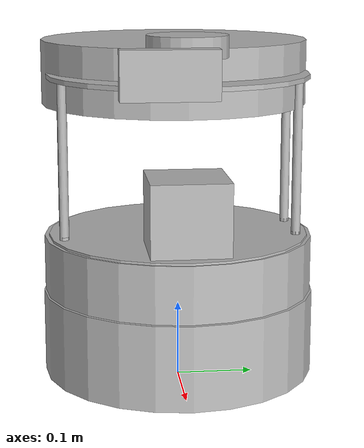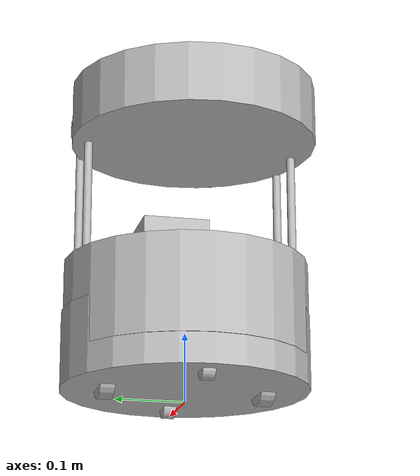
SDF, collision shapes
<sdf version='1.6'>
  <model name='barista'>
    <link name='base_footprint'>
      <pose frame=''>0 0 0 0 -0 0</pose>
      <inertial>
        <pose frame=''>0.005304 1.4e-05 0.124445 0 -0 0</pose>
        <mass>4.52732</mass>
        <inertia>
          <ixx>0.135183</ixx>
          <ixy>-3.18348e-06</ixy>
          <ixz>0.00493661</ixz>
          <iyy>0.12999</iyy>
          <iyz>5.83081e-06</iyz>
          <izz>0.0713493</izz>
        </inertia>
      </inertial>
      <collision name='base_footprint_fixed_joint_lump__base_link_collision'>
        <pose frame=''>0 0 0.06969 0 -0 0</pose>
        <geometry>
          <cylinder>
            <length>0.10938</length>
            <radius>0.178</radius>
          </cylinder>
        </geometry>
        <surface>
          <contact>
            <ode/>
          </contact>
          <friction>
            <ode>
              <mu>0.3</mu>
              <mu2>0.3</mu2>
            </ode>
          </friction>
        </surface>
      </collision>
      <collision name='base_footprint_fixed_joint_lump__caster_back_link_collision_1'>
        <pose frame=''>-0.135 0 0.0192 -1.5708 0 0</pose>
        <geometry>
          <cylinder>
            <length>0.0176</length>
            <radius>0.017</radius>
          </cylinder>
        </geometry>
        <surface>
          <contact>
            <ode>
              <kp>1e+06</kp>
              <kd>100</kd>
              <max_vel>1</max_vel>
              <min_depth>0.001</min_depth>
            </ode>
          </contact>
          <friction>
            <ode>
              <mu>0</mu>
              <mu2>0</mu2>
            </ode>
          </friction>
        </surface>
      </collision>
      <collision name='base_footprint_fixed_joint_lump__caster_front_link_collision_2'>
        <pose frame=''>0.115 0 0.0172 -1.5708 0 0</pose>
        <geometry>
          <cylinder>
            <length>0.0176</length>
            <radius>0.017</radius>
          </cylinder>
        </geometry>
        <surface>
          <contact>
            <ode>
              <kp>1e+06</kp>
              <kd>100</kd>
              <max_vel>1</max_vel>
              <min_depth>0.001</min_depth>
            </ode>
          </contact>
          <friction>
            <ode>
              <mu>0</mu>
              <mu2>0</mu2>
            </ode>
          </friction>
        </surface>
      </collision>
      <collision name='base_footprint_fixed_joint_lump__plate_bottom_link_collision_3'>
        <pose frame=''>0 0 0.1408 0 -0 0</pose>
        <geometry>
          <cylinder>
            <length>0.006</length>
            <radius>0.17</radius>
          </cylinder>
        </geometry>
      </collision>
      <collision name='base_footprint_fixed_joint_lump__plate_middle_link_collision_4'>
        <pose frame=''>0 0 0.1976 0 -0 0</pose>
        <geometry>
          <cylinder>
            <length>0.006</length>
            <radius>0.17</radius>
          </cylinder>
        </geometry>
      </collision>
      <collision name='base_footprint_fixed_joint_lump__barista_bottom_link_collision_5'>
        <pose frame=''>-0.00364 0 0.1276 0 -0 0</pose>
        <geometry>
          <cylinder>
            <length>0.14</length>
            <radius>0.176002</radius>
          </cylinder>
        </geometry>
      </collision>
      <collision name='base_footprint_fixed_joint_lump__laser_collision_6'>
        <pose frame=''>0.103007 0 0.2426 0 -0 0</pose>
        <geometry>
          <box>
            <size>0.1 0.1 0.1</size>
          </box>
        </geometry>
        <surface>
          <contact>
            <ode/>
          </contact>
          <friction>
            <ode/>
          </friction>
        </surface>
      </collision>
      <collision name='base_footprint_fixed_joint_lump__plate_top_link_collision_7'>
        <pose frame=''>0 0 0.4068 0 -0 0</pose>
        <geometry>
          <cylinder>
            <length>0.006</length>
            <radius>0.17</radius>
          </cylinder>
        </geometry>
      </collision>
      <collision name='base_footprint_fixed_joint_lump__barista_top_link_collision_8'>
        <pose frame=''>-0.05614 0 0.4068 0 -0 0</pose>
        <geometry>
          <cylinder>
            <length>0.085</length>
            <radius>0.176002</radius>
          </cylinder>
        </geometry>
      </collision>
      <collision name='base_footprint_fixed_joint_lump__barista_bowtie_link_collision_9'>
        <pose frame=''>0.182189 -0.029498 0.42554 0 -0 1.57</pose>
        <geometry>
          <box>
            <size>0.115703 0.024221 0.058996</size>
          </box>
        </geometry>
      </collision>
      <collision name='base_footprint_fixed_joint_lump__loadsensor_link_collision_10'>
        <pose frame=''>0.103007 0 0.4518 0 -0 0</pose>
        <geometry>
          <cylinder>
            <length>0.027</length>
            <radius>0.05</radius>
          </cylinder>
        </geometry>
        <surface>
          <contact>
            <ode>
              <kp>1e+06</kp>
              <kd>1</kd>
            </ode>
          </contact>
          <friction>
            <ode>
              <mu>2000</mu>
              <mu2>1000</mu2>
            </ode>
          </friction>
        </surface>
      </collision>
      <collision name='base_footprint_fixed_joint_lump__pole_bottom_0_link_collision_11'>
        <pose frame=''>0.12 0.082 0.113 0 -0 0</pose>
        <geometry>
          <cylinder>
            <length>0.0492</length>
            <radius>0.006</radius>
          </cylinder>
        </geometry>
      </collision>
      <collision name='base_footprint_fixed_joint_lump__pole_bottom_1_link_collision_12'>
        <pose frame=''>0.055 0.12 0.113 0 -0 0</pose>
        <geometry>
          <cylinder>
            <length>0.0492</length>
            <radius>0.006</radius>
          </cylinder>
        </geometry>
      </collision>
      <collision name='base_footprint_fixed_joint_lump__pole_bottom_2_link_collision_13'>
        <pose frame=''>-0.055 0.12 0.113 0 -0 0</pose>
        <geometry>
          <cylinder>
            <length>0.0492</length>
            <radius>0.006</radius>
          </cylinder>
        </geometry>
      </collision>
      <collision name='base_footprint_fixed_joint_lump__pole_bottom_3_link_collision_14'>
        <pose frame=''>0.12 -0.082 0.113 0 -0 0</pose>
        <geometry>
          <cylinder>
            <length>0.0492</length>
            <radius>0.006</radius>
          </cylinder>
        </geometry>
      </collision>
      <collision name='base_footprint_fixed_joint_lump__pole_bottom_4_link_collision_15'>
        <pose frame=''>0.055 -0.12 0.113 0 -0 0</pose>
        <geometry>
          <cylinder>
            <length>0.0492</length>
            <radius>0.006</radius>
          </cylinder>
        </geometry>
      </collision>
      <collision name='base_footprint_fixed_joint_lump__pole_bottom_5_link_collision_16'>
        <pose frame=''>-0.055 -0.12 0.113 0 -0 0</pose>
        <geometry>
          <cylinder>
            <length>0.0492</length>
            <radius>0.006</radius>
          </cylinder>
        </geometry>
      </collision>
      <collision name='base_footprint_fixed_joint_lump__pole_middle_0_link_collision_17'>
        <pose frame=''>0.0381 0.1505 0.1742 0 -0 0</pose>
        <geometry>
          <cylinder>
            <length>0.0608</length>
            <radius>0.006</radius>
          </cylinder>
        </geometry>
      </collision>
      <collision name='base_footprint_fixed_joint_lump__pole_middle_1_link_collision_18'>
        <pose frame=''>0.0381 -0.1505 0.1742 0 -0 0</pose>
        <geometry>
          <cylinder>
            <length>0.0608</length>
            <radius>0.006</radius>
          </cylinder>
        </geometry>
      </collision>
      <collision name='base_footprint_fixed_joint_lump__pole_middle_2_link_collision_19'>
        <pose frame=''>-0.0381 0.1505 0.1742 0 -0 0</pose>
        <geometry>
          <cylinder>
            <length>0.0608</length>
            <radius>0.006</radius>
          </cylinder>
        </geometry>
      </collision>
      <collision name='base_footprint_fixed_joint_lump__pole_middle_3_link_collision_20'>
        <pose frame=''>-0.0381 -0.1505 0.1742 0 -0 0</pose>
        <geometry>
          <cylinder>
            <length>0.0608</length>
            <radius>0.006</radius>
          </cylinder>
        </geometry>
      </collision>
      <collision name='base_footprint_fixed_joint_lump__pole_top_0_link_collision_21'>
        <pose frame=''>0.0381 0.1505 0.3022 0 -0 0</pose>
        <geometry>
          <cylinder>
            <length>0.2032</length>
            <radius>0.006</radius>
          </cylinder>
        </geometry>
      </collision>
      <collision name='base_footprint_fixed_joint_lump__pole_top_1_link_collision_22'>
        <pose frame=''>0.0381 -0.1505 0.3022 0 -0 0</pose>
        <geometry>
          <cylinder>
            <length>0.2032</length>
            <radius>0.006</radius>
          </cylinder>
        </geometry>
      </collision>
      <collision name='base_footprint_fixed_joint_lump__pole_top_2_link_collision_23'>
        <pose frame=''>-0.0381 0.1505 0.3022 0 -0 0</pose>
        <geometry>
          <cylinder>
            <length>0.2032</length>
            <radius>0.006</radius>
          </cylinder>
        </geometry>
      </collision>
      <collision name='base_footprint_fixed_joint_lump__pole_top_3_link_collision_24'>
        <pose frame=''>-0.0381 -0.1505 0.3022 0 -0 0</pose>
        <geometry>
          <cylinder>
            <length>0.2032</length>
            <radius>0.006</radius>
          </cylinder>
        </geometry>
      </collision>
      <visual name='base_footprint_fixed_joint_lump__base_link_visual'>
        <pose frame=''>0.001 0 0.06219 0 -0 0</pose>
        <geometry>
          <mesh>
            <scale>1 1 1</scale>
            <uri>model://kobuki_description/meshes/main_body.dae</uri>
          </mesh>
        </geometry>
        <material>
          <script>
            <uri>__default__</uri>
            <name>__default__</name>
          </script>
        </material>
      </visual>
      <visual name='base_footprint_fixed_joint_lump__plate_bottom_link_visual_1'>
        <pose frame=''>0.02364 0 0.1408 0 -0 0</pose>
        <geometry>
          <mesh>
            <scale>1 1 1</scale>
            <uri>model://turtlebot_description/meshes/stacks/hexagons/plate_bottom.dae</uri>
          </mesh>
        </geometry>
      </visual>
      <visual name='base_footprint_fixed_joint_lump__plate_middle_link_visual_2'>
        <pose frame=''>-0.01364 0 0.1976 0 -0 0</pose>
        <geometry>
          <mesh>
            <scale>1 1 1</scale>
            <uri>model://turtlebot_description/meshes/stacks/hexagons/plate_middle.dae</uri>
          </mesh>
        </geometry>
      </visual>
      <visual name='base_footprint_fixed_joint_lump__barista_bottom_link_visual_3'>
        <pose frame=''>-0.00364 0 0.1976 0 -0 0</pose>
        <geometry>
          <mesh>
            <scale>1 1 1</scale>
            <uri>model://barista_description/meshes/barista/BOTTOM_colour.dae</uri>
          </mesh>
        </geometry>
      </visual>
      <visual name='base_footprint_fixed_joint_lump__laser_visual_4'>
        <pose frame=''>0.103007 0 0.2426 0 -0 0</pose>
        <geometry>
          <mesh>
            <scale>1 1 1</scale>
            <uri>model://turtlebot_description/meshes/sensors/hokuyo.dae</uri>
          </mesh>
        </geometry>
        <material>
          <script>
            <uri>__default__</uri>
            <name>__default__</name>
          </script>
        </material>
      </visual>
      <visual name='base_footprint_fixed_joint_lump__plate_top_link_visual_5'>
        <pose frame=''>-0.01364 0 0.4068 0 -0 0</pose>
        <geometry>
          <mesh>
            <scale>1 1 1</scale>
            <uri>model://turtlebot_description/meshes/stacks/hexagons/plate_top.dae</uri>
          </mesh>
        </geometry>
      </visual>
      <visual name='base_footprint_fixed_joint_lump__barista_top_link_visual_6'>
        <pose frame=''>-0.01364 0 0.4068 0 -0 0</pose>
        <geometry>
          <mesh>
            <scale>1 1 1</scale>
            <uri>model://barista_description/meshes/barista/TOP_colour.dae</uri>
          </mesh>
        </geometry>
      </visual>
      <visual name='base_footprint_fixed_joint_lump__barista_bowtie_link_visual_7'>
        <pose frame=''>0.182212 0 0.42554 0 -0 1.57</pose>
        <geometry>
          <mesh>
            <scale>1 1 1</scale>
            <uri>model://barista_description/meshes/barista/bowtie_fixed_colour.dae</uri>
          </mesh>
        </geometry>
      </visual>
      <visual name='base_footprint_fixed_joint_lump__loadsensor_link_visual_8'>
        <pose frame=''>0.103007 0 0.4518 0 -0 0</pose>
        <geometry>
          <cylinder>
            <length>0.027</length>
            <radius>0.05</radius>
          </cylinder>
        </geometry>
        <material>
          <script>
            <name>Gazebo/Green</name>
            <uri>file://media/materials/scripts/gazebo.material</uri>
          </script>
        </material>
      </visual>
      <visual name='base_footprint_fixed_joint_lump__pole_bottom_0_link_visual_9'>
        <pose frame=''>0.12 0.082 0.113 0 -0 0</pose>
        <geometry>
          <mesh>
            <scale>1 1 1</scale>
            <uri>model://turtlebot_description/meshes/stacks/hexagons/pole_bottom.dae</uri>
          </mesh>
        </geometry>
      </visual>
      <visual name='base_footprint_fixed_joint_lump__pole_bottom_1_link_visual_10'>
        <pose frame=''>0.055 0.12 0.113 0 -0 0</pose>
        <geometry>
          <mesh>
            <scale>1 1 1</scale>
            <uri>model://turtlebot_description/meshes/stacks/hexagons/pole_bottom.dae</uri>
          </mesh>
        </geometry>
      </visual>
      <visual name='base_footprint_fixed_joint_lump__pole_bottom_2_link_visual_11'>
        <pose frame=''>-0.055 0.12 0.113 0 -0 0</pose>
        <geometry>
          <mesh>
            <scale>1 1 1</scale>
            <uri>model://turtlebot_description/meshes/stacks/hexagons/pole_bottom.dae</uri>
          </mesh>
        </geometry>
      </visual>
      <visual name='base_footprint_fixed_joint_lump__pole_bottom_3_link_visual_12'>
        <pose frame=''>0.12 -0.082 0.113 0 -0 0</pose>
        <geometry>
          <mesh>
            <scale>1 1 1</scale>
            <uri>model://turtlebot_description/meshes/stacks/hexagons/pole_bottom.dae</uri>
          </mesh>
        </geometry>
      </visual>
      <visual name='base_footprint_fixed_joint_lump__pole_bottom_4_link_visual_13'>
        <pose frame=''>0.055 -0.12 0.113 0 -0 0</pose>
        <geometry>
          <mesh>
            <scale>1 1 1</scale>
            <uri>model://turtlebot_description/meshes/stacks/hexagons/pole_bottom.dae</uri>
          </mesh>
        </geometry>
      </visual>
      <visual name='base_footprint_fixed_joint_lump__pole_bottom_5_link_visual_14'>
        <pose frame=''>-0.055 -0.12 0.113 0 -0 0</pose>
        <geometry>
          <mesh>
            <scale>1 1 1</scale>
            <uri>model://turtlebot_description/meshes/stacks/hexagons/pole_bottom.dae</uri>
          </mesh>
        </geometry>
      </visual>
      <visual name='base_footprint_fixed_joint_lump__pole_middle_0_link_visual_15'>
        <pose frame=''>0.0381 0.1505 0.1742 3.14159 -0 3.14159</pose>
        <geometry>
          <mesh>
            <scale>1 1 1</scale>
            <uri>model://turtlebot_description/meshes/stacks/hexagons/pole_middle.dae</uri>
          </mesh>
        </geometry>
      </visual>
      <visual name='base_footprint_fixed_joint_lump__pole_middle_1_link_visual_16'>
        <pose frame=''>0.0381 -0.1505 0.1742 3.14159 -0 3.14159</pose>
        <geometry>
          <mesh>
            <scale>1 1 1</scale>
            <uri>model://turtlebot_description/meshes/stacks/hexagons/pole_middle.dae</uri>
          </mesh>
        </geometry>
      </visual>
      <visual name='base_footprint_fixed_joint_lump__pole_middle_2_link_visual_17'>
        <pose frame=''>-0.0381 0.1505 0.1742 3.14159 -0 3.14159</pose>
        <geometry>
          <mesh>
            <scale>1 1 1</scale>
            <uri>model://turtlebot_description/meshes/stacks/hexagons/pole_middle.dae</uri>
          </mesh>
        </geometry>
      </visual>
      <visual name='base_footprint_fixed_joint_lump__pole_middle_3_link_visual_18'>
        <pose frame=''>-0.0381 -0.1505 0.1742 3.14159 -0 3.14159</pose>
        <geometry>
          <mesh>
            <scale>1 1 1</scale>
            <uri>model://turtlebot_description/meshes/stacks/hexagons/pole_middle.dae</uri>
          </mesh>
        </geometry>
      </visual>
      <visual name='base_footprint_fixed_joint_lump__pole_top_0_link_visual_19'>
        <pose frame=''>0.0381 0.1505 0.3022 0 -0 0</pose>
        <geometry>
          <mesh>
            <scale>1 1 1</scale>
            <uri>model://turtlebot_description/meshes/stacks/hexagons/pole_top.dae</uri>
          </mesh>
        </geometry>
      </visual>
      <visual name='base_footprint_fixed_joint_lump__pole_top_1_link_visual_20'>
        <pose frame=''>0.0381 -0.1505 0.3022 0 -0 0</pose>
        <geometry>
          <mesh>
            <scale>1 1 1</scale>
            <uri>model://turtlebot_description/meshes/stacks/hexagons/pole_top.dae</uri>
          </mesh>
        </geometry>
      </visual>
      <visual name='base_footprint_fixed_joint_lump__pole_top_2_link_visual_21'>
        <pose frame=''>-0.0381 0.1505 0.3022 0 -0 0</pose>
        <geometry>
          <mesh>
            <scale>1 1 1</scale>
            <uri>model://turtlebot_description/meshes/stacks/hexagons/pole_top.dae</uri>
          </mesh>
        </geometry>
      </visual>
      <visual name='base_footprint_fixed_joint_lump__pole_top_3_link_visual_22'>
        <pose frame=''>-0.0381 -0.1505 0.3022 0 -0 0</pose>
        <geometry>
          <mesh>
            <scale>1 1 1</scale>
            <uri>model://turtlebot_description/meshes/stacks/hexagons/pole_top.dae</uri>
          </mesh>
        </geometry>
      </visual>
      <velocity_decay/>
      <sensor name='bumpers' type='contact'>
        <always_on>1</always_on>
        <update_rate>50</update_rate>
        <visualize>1</visualize>
        <contact>
          <collision>base_footprint_collision_base_link</collision>
          <topic>__default_topic__</topic>
        </contact>
        <pose frame=''>0 0 0.0102 0 -0 0</pose>
      </sensor>
      <velocity_decay/>
      <velocity_decay/>
      <velocity_decay/>
      <sensor name='cliff_sensor_front' type='ray'>
        <always_on>1</always_on>
        <update_rate>50</update_rate>
        <visualize>1</visualize>
        <ray>
          <scan>
            <horizontal>
              <samples>50</samples>
              <resolution>1</resolution>
              <min_angle>-0.0436</min_angle>
              <max_angle>0.0436</max_angle>
            </horizontal>
          </scan>
          <range>
            <min>0.01</min>
            <max>0.15</max>
            <resolution>1</resolution>
          </range>
        </ray>
        <pose frame=''>0.156 0 0.0316 3.14159 1.57079 3.14159</pose>
      </sensor>
      <velocity_decay/>
      <sensor name='cliff_sensor_left' type='ray'>
        <always_on>1</always_on>
        <update_rate>50</update_rate>
        <visualize>1</visualize>
        <ray>
          <scan>
            <horizontal>
              <samples>50</samples>
              <resolution>1</resolution>
              <min_angle>-0.0436</min_angle>
              <max_angle>0.0436</max_angle>
            </horizontal>
          </scan>
          <range>
            <min>0.01</min>
            <max>0.15</max>
            <resolution>1</resolution>
          </range>
        </ray>
        <pose frame=''>0.08734 0.13601 0.0316 3.14159 1.57079 3.14159</pose>
      </sensor>
      <velocity_decay/>
      <sensor name='cliff_sensor_right' type='ray'>
        <always_on>1</always_on>
        <update_rate>50</update_rate>
        <visualize>1</visualize>
        <ray>
          <scan>
            <horizontal>
              <samples>50</samples>
              <resolution>1</resolution>
              <min_angle>-0.0436</min_angle>
              <max_angle>0.0436</max_angle>
            </horizontal>
          </scan>
          <range>
            <min>0.01</min>
            <max>0.15</max>
            <resolution>1</resolution>
          </range>
        </ray>
        <pose frame=''>0.085 -0.13601 0.0316 3.14159 1.57079 3.14159</pose>
      </sensor>
      <velocity_decay/>
      <sensor name='imu' type='imu'>
        <always_on>1</always_on>
        <update_rate>50</update_rate>
        <visualize>0</visualize>
        <imu>
          <angular_velocity>
            <x>
              <noise type='gaussian'>
                <mean>0</mean>
                <stddev>1.96e-06</stddev>
                <bias_mean>0</bias_mean>
                <bias_stddev>0</bias_stddev>
              </noise>
            </x>
            <y>
              <noise type='gaussian'>
                <mean>0</mean>
                <stddev>1.96e-06</stddev>
                <bias_mean>0</bias_mean>
                <bias_stddev>0</bias_stddev>
              </noise>
            </y>
            <z>
              <noise type='gaussian'>
                <mean>0</mean>
                <stddev>1.96e-06</stddev>
                <bias_mean>0</bias_mean>
                <bias_stddev>0</bias_stddev>
              </noise>
            </z>
          </angular_velocity>
          <linear_acceleration>
            <x>
              <noise type='gaussian'>
                <mean>0</mean>
                <stddev>0.017</stddev>
                <bias_mean>0.1</bias_mean>
                <bias_stddev>0.001</bias_stddev>
              </noise>
            </x>
            <y>
              <noise type='gaussian'>
                <mean>0</mean>
                <stddev>0.017</stddev>
                <bias_mean>0.1</bias_mean>
                <bias_stddev>0.001</bias_stddev>
              </noise>
            </y>
            <z>
              <noise type='gaussian'>
                <mean>0</mean>
                <stddev>0.017</stddev>
                <bias_mean>0.1</bias_mean>
                <bias_stddev>0.001</bias_stddev>
              </noise>
            </z>
          </linear_acceleration>
        </imu>
        <pose frame=''>0.056 0.062 0.0304 0 -0 0</pose>
      </sensor>
      <velocity_decay/>
      <sensor name='laser_sensor' type='gpu_ray'>
        <visualize>0</visualize>
        <update_rate>40</update_rate>
        <ray>
          <scan>
            <horizontal>
              <samples>720</samples>
              <resolution>1</resolution>
              <min_angle>-1.5708</min_angle>
              <max_angle>1.5708</max_angle>
            </horizontal>
          </scan>
          <range>
            <min>0.1</min>
            <max>30</max>
            <resolution>0.01</resolution>
          </range>
          <noise>
            <type>gaussian</type>
            <mean>0</mean>
            <stddev>0.01</stddev>
          </noise>
        </ray>
        <plugin name='gazebo_ros_head_hokuyo_controller' filename='libgazebo_ros_gpu_laser.so'>
          <topicName>/scan</topicName>
          <frameName>laser</frameName>
        </plugin>
        <pose frame=''>0.103007 0 0.2426 0 -0 0</pose>
      </sensor>
      <gravity>1</gravity>
      <velocity_decay/>
      <self_collide>0</self_collide>
      <sensor name='loadsensor_link_contactsensor_sensor' type='contact'>
        <always_on>1</always_on>
        <contact>
          <collision>base_footprint_fixed_joint_lump__loadsensor_link_collision_10</collision>
          <topic>__default_topic__</topic>
        </contact>
        <plugin name='loadsensor_link_plugin' filename='libgazebo_ros_bumper.so'>
          <bumperTopicName>loadsensor_link_contactsensor_state</bumperTopicName>
          <frameName>loadsensor_link</frameName>
        </plugin>
        <pose frame=''>0.103007 0 0.4518 0 -0 0</pose>
      </sensor>
    </link>
    <link name='wheel_left_link'>
      <pose frame=''>0 0.115 0.0352 -1.5708 0 0</pose>
      <inertial>
        <pose frame=''>0 0 0 0 -0 0</pose>
        <mass>0.01</mass>
        <inertia>
          <ixx>0.001</ixx>
          <ixy>0</ixy>
          <ixz>0</ixz>
          <iyy>0.001</iyy>
          <iyz>0</iyz>
          <izz>0.001</izz>
        </inertia>
      </inertial>
      <collision name='wheel_left_link_collision'>
        <pose frame=''>0 0 0 0 -0 0</pose>
        <geometry>
          <cylinder>
            <length>0.0206</length>
            <radius>0.0352</radius>
          </cylinder>
        </geometry>
        <surface>
          <contact>
            <ode>
              <kp>1e+06</kp>
              <kd>100</kd>
              <max_vel>1</max_vel>
              <min_depth>0.001</min_depth>
            </ode>
          </contact>
          <friction>
            <ode>
              <mu>1</mu>
              <mu2>1</mu2>
            </ode>
          </friction>
        </surface>
      </collision>
      <visual name='wheel_left_link_visual'>
        <pose frame=''>0 0 0 0 -0 0</pose>
        <geometry>
          <mesh>
            <scale>1 1 1</scale>
            <uri>model://kobuki_description/meshes/wheel.dae</uri>
          </mesh>
        </geometry>
        <material>
          <script>
            <uri>__default__</uri>
            <name>__default__</name>
          </script>
        </material>
      </visual>
      <gravity>1</gravity>
      <velocity_decay/>
      <self_collide>0</self_collide>
    </link>
    <joint name='wheel_left_joint' type='revolute'>
      <child>wheel_left_link</child>
      <parent>base_footprint</parent>
      <axis>
        <xyz>0 1 0</xyz>
        <limit>
          <lower>-1e+16</lower>
          <upper>1e+16</upper>
        </limit>
        <dynamics>
          <spring_reference>0</spring_reference>
          <spring_stiffness>0</spring_stiffness>
        </dynamics>
        <use_parent_model_frame>1</use_parent_model_frame>
      </axis>
    </joint>
    <link name='wheel_right_link'>
      <pose frame=''>0 -0.115 0.0352 -1.5708 0 0</pose>
      <inertial>
        <pose frame=''>0 0 0 0 -0 0</pose>
        <mass>0.01</mass>
        <inertia>
          <ixx>0.001</ixx>
          <ixy>0</ixy>
          <ixz>0</ixz>
          <iyy>0.001</iyy>
          <iyz>0</iyz>
          <izz>0.001</izz>
        </inertia>
      </inertial>
      <collision name='wheel_right_link_collision'>
        <pose frame=''>0 0 0 0 -0 0</pose>
        <geometry>
          <cylinder>
            <length>0.0206</length>
            <radius>0.035</radius>
          </cylinder>
        </geometry>
        <surface>
          <contact>
            <ode>
              <kp>1e+06</kp>
              <kd>100</kd>
              <max_vel>1</max_vel>
              <min_depth>0.001</min_depth>
            </ode>
          </contact>
          <friction>
            <ode>
              <mu>1</mu>
              <mu2>1</mu2>
            </ode>
          </friction>
        </surface>
      </collision>
      <visual name='wheel_right_link_visual'>
        <pose frame=''>0 0 0 0 -0 0</pose>
        <geometry>
          <mesh>
            <scale>1 1 1</scale>
            <uri>model://kobuki_description/meshes/wheel.dae</uri>
          </mesh>
        </geometry>
        <material>
          <script>
            <uri>__default__</uri>
            <name>__default__</name>
          </script>
        </material>
      </visual>
      <gravity>1</gravity>
      <velocity_decay/>
      <self_collide>0</self_collide>
    </link>
    <joint name='wheel_right_joint' type='revolute'>
      <child>wheel_right_link</child>
      <parent>base_footprint</parent>
      <axis>
        <xyz>0 1 0</xyz>
        <limit>
          <lower>-1e+16</lower>
          <upper>1e+16</upper>
        </limit>
        <dynamics>
          <spring_reference>0</spring_reference>
          <spring_stiffness>0</spring_stiffness>
        </dynamics>
        <use_parent_model_frame>1</use_parent_model_frame>
      </axis>
    </joint>
    <static>0</static>
    <plugin name='differential_drive_controller' filename='libgazebo_ros_diff_drive.so'>
      <alwaysOn>true</alwaysOn>
      <updateRate>20</updateRate>
      <leftJoint>wheel_right_joint</leftJoint>
      <rightJoint>wheel_left_joint</rightJoint>
      <wheelSeparation>.230</wheelSeparation>
      <wheelDiameter>0.070</wheelDiameter>
      <torque>1.0</torque>
      <commandTopic>/cmd_vel_mux/input/teleop</commandTopic>
      <odometryTopic>odom</odometryTopic>
      <odometryFrame>odom</odometryFrame>
      <robotBaseFrame>base_footprint</robotBaseFrame>
    </plugin>
  </model>
</sdf>
